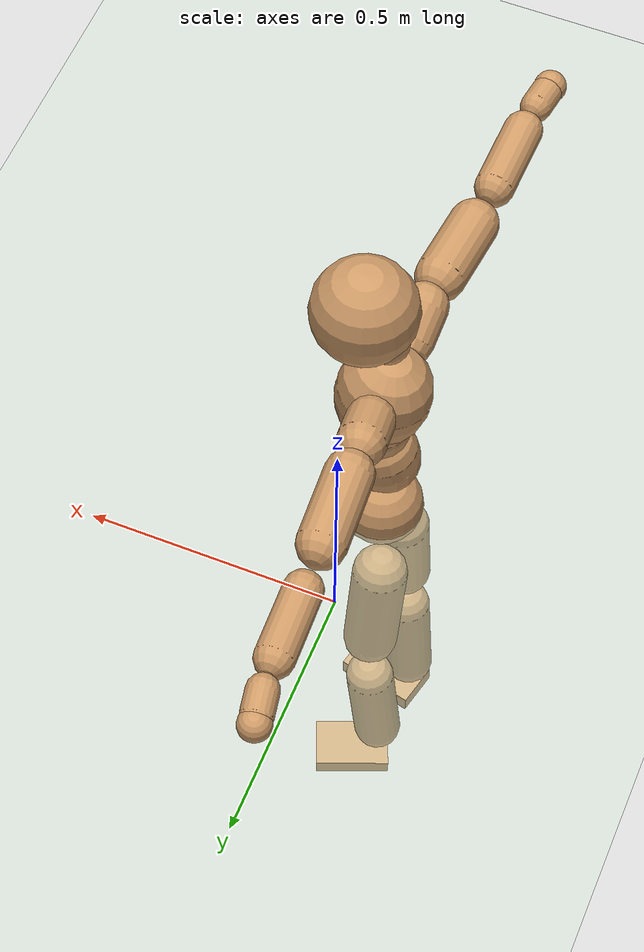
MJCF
<mujoco model="humanoid">
  <compiler coordinate="local" angle="radian"/>
  <default>
    <joint damping="0.0" armature="0.01" stiffness="0.0" limited="true"/>
    <geom conaffinity="1" condim="3" contype="7" margin="0.001" rgba="0.8 0.6 .4 1"/>
  </default>
  <asset>
    <texture type="skybox" builtin="gradient" rgb1=".4 .5 .6" rgb2="0 0 0" width="100" height="100"/>
    <texture builtin="flat" height="1278" mark="cross" markrgb="1 1 1" name="texgeom" random="0.01" rgb1="0.8 0.6 0.4" rgb2="0.8 0.6 0.4" type="cube" width="127"/>
    <texture builtin="checker" height="100" name="texplane" rgb1="0 0 0" rgb2="0.8 0.8 0.8" type="2d" width="100"/>
    <material name="MatPlane" reflectance="0.5" shininess="1" specular="1" texrepeat="60 60" texture="texplane"/>
    <material name="geom" texture="texgeom" texuniform="true"/>
  </asset>
  <worldbody>
    <light cutoff="100" diffuse="1 1 1" dir="-0 0 -1.3" directional="true" exponent="1" pos="0 0 1.3" specular=".1 .1 .1"/>
    <geom conaffinity="1" condim="3" name="floor" pos="0 0 0" rgba="0.8 0.9 0.8 1" size="100 100 .2" type="plane" material="MatPlane"/>
    <body name="Pelvis" pos="-0.001 -0.2356 0.0047">
      <freejoint name="Pelvis"/>
      <geom type="sphere" contype="1" conaffinity="1" density="500" size="0.0817" pos="0.0000 0.0000 0.0000" name="Pelvis"/>
      <body name="L_Hip" pos="-0.0258 0.0504 -0.0781">
        <joint name="L_Hip_x" type="hinge" pos="0 0 0" axis="1 0 0" stiffness="800" damping="80" armature="0.02" range="-180.0000 180.0000"/>
        <joint name="L_Hip_y" type="hinge" pos="0 0 0" axis="0 1 0" stiffness="800" damping="80" armature="0.02" range="-180.0000 180.0000"/>
        <joint name="L_Hip_z" type="hinge" pos="0 0 0" axis="0 0 1" stiffness="800" damping="80" armature="0.02" range="-180.0000 180.0000"/>
        <geom type="capsule" contype="1" conaffinity="1" density="500" fromto="0.0018 0.0089 -0.0746 0.0071 0.0356 -0.2983" size="0.0544" name="L_Hip"/>
        <body name="L_Knee" pos="0.0089 0.0445 -0.3728">
          <joint name="L_Knee_x" type="hinge" pos="0 0 0" axis="1 0 0" stiffness="800" damping="80" armature="0.02" range="-180.0000 180.0000"/>
          <joint name="L_Knee_y" type="hinge" pos="0 0 0" axis="0 1 0" stiffness="800" damping="80" armature="0.02" range="-180.0000 180.0000"/>
          <joint name="L_Knee_z" type="hinge" pos="0 0 0" axis="0 0 1" stiffness="800" damping="80" armature="0.02" range="-180.0000 180.0000"/>
          <geom type="capsule" contype="1" conaffinity="1" density="500" fromto="-0.0065 -0.0022 -0.0761 -0.0260 -0.0086 -0.3046" size="0.0491" name="L_Knee"/>
          <body name="L_Ankle" pos="-0.0325 -0.0108 -0.3807">
            <joint name="L_Ankle_x" type="hinge" pos="0 0 0" axis="1 0 0" stiffness="800" damping="80" armature="0.02" range="-180.0000 180.0000"/>
            <joint name="L_Ankle_y" type="hinge" pos="0 0 0" axis="0 1 0" stiffness="800" damping="80" armature="0.02" range="-180.0000 180.0000"/>
            <joint name="L_Ankle_z" type="hinge" pos="0 0 0" axis="0 0 1" stiffness="800" damping="80" armature="0.02" range="-180.0000 180.0000"/>
            <geom type="box" contype="1" conaffinity="1" density="500" pos="0.0553 0.0225 -0.0279" size="0.0775 0.0505 0.0189" quat="0.9814 0.0000 0.0000 0.1922" name="L_Ankle"/>
            <body name="L_Toe" pos="0.1106 0.045 -0.0558">
              <joint name="L_Toe_x" type="hinge" pos="0 0 0" axis="1 0 0" stiffness="500" damping="50" armature="0.02" range="-180.0000 180.0000"/>
              <joint name="L_Toe_y" type="hinge" pos="0 0 0" axis="0 1 0" stiffness="500" damping="50" armature="0.02" range="-180.0000 180.0000"/>
              <joint name="L_Toe_z" type="hinge" pos="0 0 0" axis="0 0 1" stiffness="500" damping="50" armature="0.02" range="-180.0000 180.0000"/>
              <geom type="box" contype="1" conaffinity="1" density="500" pos="0.0000 0.0000 0.0296" size="0.001 0.0024 0.001" quat="0.9805 0.0000 0.0000 0.1966" name="L_Toe"/>
            </body>
          </body>
        </body>
      </body>
      <body name="R_Hip" pos="-0.0236 -0.0527 -0.0854">
        <joint name="R_Hip_x" type="hinge" pos="0 0 0" axis="1 0 0" stiffness="800" damping="80" armature="0.02" range="-180.0000 180.0000"/>
        <joint name="R_Hip_y" type="hinge" pos="0 0 0" axis="0 1 0" stiffness="800" damping="80" armature="0.02" range="-180.0000 180.0000"/>
        <joint name="R_Hip_z" type="hinge" pos="0 0 0" axis="0 0 1" stiffness="800" damping="80" armature="0.02" range="-180.0000 180.0000"/>
        <geom type="capsule" contype="1" conaffinity="1" density="500" fromto="-0.0004 -0.0088 -0.0730 -0.0016 -0.0350 -0.2921" size="0.0538" name="R_Hip"/>
        <body name="R_Knee" pos="-0.002 -0.0438 -0.3651">
          <joint name="R_Knee_x" type="hinge" pos="0 0 0" axis="1 0 0" stiffness="800" damping="80" armature="0.02" range="-180.0000 180.0000"/>
          <joint name="R_Knee_y" type="hinge" pos="0 0 0" axis="0 1 0" stiffness="800" damping="80" armature="0.02" range="-180.0000 180.0000"/>
          <joint name="R_Knee_z" type="hinge" pos="0 0 0" axis="0 0 1" stiffness="800" damping="80" armature="0.02" range="-180.0000 180.0000"/>
          <geom type="capsule" contype="1" conaffinity="1" density="500" fromto="-0.0060 0.0033 -0.0749 -0.0238 0.0131 -0.2997" size="0.0499" name="R_Knee"/>
          <body name="R_Ankle" pos="-0.0298 0.0164 -0.3747">
            <joint name="R_Ankle_x" type="hinge" pos="0 0 0" axis="1 0 0" stiffness="800" damping="80" armature="0.02" range="-180.0000 180.0000"/>
            <joint name="R_Ankle_y" type="hinge" pos="0 0 0" axis="0 1 0" stiffness="800" damping="80" armature="0.02" range="-180.0000 180.0000"/>
            <joint name="R_Ankle_z" type="hinge" pos="0 0 0" axis="0 0 1" stiffness="800" damping="80" armature="0.02" range="-180.0000 180.0000"/>
            <geom type="box" contype="1" conaffinity="1" density="500" pos="0.0596 -0.0139 -0.0295" size="0.0833 0.0472 0.0202" quat="0.9934 0.0000 0.0000 -0.1143" name="R_Ankle"/>
            <body name="R_Toe" pos="0.1192 -0.0278 -0.059">
              <joint name="R_Toe_x" type="hinge" pos="0 0 0" axis="1 0 0" stiffness="500" damping="50" armature="0.02" range="-180.0000 180.0000"/>
              <joint name="R_Toe_y" type="hinge" pos="0 0 0" axis="0 1 0" stiffness="500" damping="50" armature="0.02" range="-180.0000 180.0000"/>
              <joint name="R_Toe_z" type="hinge" pos="0 0 0" axis="0 0 1" stiffness="500" damping="50" armature="0.02" range="-180.0000 180.0000"/>
              <geom type="box" contype="1" conaffinity="1" density="500" pos="0.0000 0.0000 0.0319" size="0.0009 0.0023 0.0011" quat="0.9945 0.0000 0.0000 -0.1047" name="R_Toe"/>
            </body>
          </body>
        </body>
      </body>
      <body name="Torso" pos="-0.02 0.0037 0.1138">
        <joint name="Torso_x" type="hinge" pos="0 0 0" axis="1 0 0" stiffness="1000" damping="100" armature="0.02" range="-180.0000 180.0000"/>
        <joint name="Torso_y" type="hinge" pos="0 0 0" axis="0 1 0" stiffness="1000" damping="100" armature="0.02" range="-180.0000 180.0000"/>
        <joint name="Torso_z" type="hinge" pos="0 0 0" axis="0 0 1" stiffness="1000" damping="100" armature="0.02" range="-180.0000 180.0000"/>
        <geom type="capsule" contype="1" conaffinity="1" density="500" fromto="0.0198 0.0028 0.0841 0.0132 0.0019 0.0561" size="0.0665" name="Torso"/>
        <body name="Spine" pos="0.033 0.0047 0.1402">
          <joint name="Spine_x" type="hinge" pos="0 0 0" axis="1 0 0" stiffness="1000" damping="100" armature="0.02" range="-180.0000 180.0000"/>
          <joint name="Spine_y" type="hinge" pos="0 0 0" axis="0 1 0" stiffness="1000" damping="100" armature="0.02" range="-180.0000 180.0000"/>
          <joint name="Spine_z" type="hinge" pos="0 0 0" axis="0 0 1" stiffness="1000" damping="100" armature="0.02" range="-180.0000 180.0000"/>
          <geom type="capsule" contype="1" conaffinity="1" density="500" fromto="0.0010 -0.0011 0.0337 0.0007 -0.0007 0.0225" size="0.0665" name="Spine"/>
          <body name="Chest" pos="0.0017 -0.0018 0.0561">
            <joint name="Chest_x" type="hinge" pos="0 0 0" axis="1 0 0" stiffness="1000" damping="100" armature="0.02" range="-180.0000 180.0000"/>
            <joint name="Chest_y" type="hinge" pos="0 0 0" axis="0 1 0" stiffness="1000" damping="100" armature="0.02" range="-180.0000 180.0000"/>
            <joint name="Chest_z" type="hinge" pos="0 0 0" axis="0 0 1" stiffness="1000" damping="100" armature="0.02" range="-180.0000 180.0000"/>
            <geom type="capsule" contype="1" conaffinity="1" density="500" fromto="-0.0119 -0.0056 0.0805 -0.0079 -0.0037 0.0536" size="0.0889" name="Chest"/>
            <body name="Neck" pos="-0.0217 -0.0139 0.1971">
              <joint name="Neck_x" type="hinge" pos="0 0 0" axis="1 0 0" stiffness="500" damping="50" armature="0.02" range="-180.0000 180.0000"/>
              <joint name="Neck_y" type="hinge" pos="0 0 0" axis="0 1 0" stiffness="500" damping="50" armature="0.02" range="-180.0000 180.0000"/>
              <joint name="Neck_z" type="hinge" pos="0 0 0" axis="0 0 1" stiffness="500" damping="50" armature="0.02" range="-180.0000 180.0000"/>
              <geom type="capsule" contype="1" conaffinity="1" density="500" fromto="0.0106 0.0018 0.0199 0.0425 0.0070 0.0797" size="0.0415" name="Neck"/>
              <body name="Head" pos="0.0531 0.0088 0.0997">
                <joint name="Head_x" type="hinge" pos="0 0 0" axis="1 0 0" stiffness="500" damping="50" armature="0.02" range="-180.0000 180.0000"/>
                <joint name="Head_y" type="hinge" pos="0 0 0" axis="0 1 0" stiffness="500" damping="50" armature="0.02" range="-180.0000 180.0000"/>
                <joint name="Head_z" type="hinge" pos="0 0 0" axis="0 0 1" stiffness="500" damping="50" armature="0.02" range="-180.0000 180.0000"/>
                <geom type="sphere" contype="1" conaffinity="1" density="500" size="0.0994" pos="0.0000 0.0000 0.0000" name="Head"/>
              </body>
            </body>
            <body name="L_Thorax" pos="-0.0169 0.065 0.1026">
              <joint name="L_Thorax_x" type="hinge" pos="0 0 0" axis="1 0 0" stiffness="500" damping="50" armature="0.02" range="-180.0000 180.0000"/>
              <joint name="L_Thorax_y" type="hinge" pos="0 0 0" axis="0 1 0" stiffness="500" damping="50" armature="0.02" range="-180.0000 180.0000"/>
              <joint name="L_Thorax_z" type="hinge" pos="0 0 0" axis="0 0 1" stiffness="500" damping="50" armature="0.02" range="-180.0000 180.0000"/>
              <geom type="capsule" contype="1" conaffinity="1" density="500" fromto="-0.0029 0.0223 0.0088 -0.0114 0.0893 0.0350" size="0.0456" name="L_Thorax"/>
              <body name="L_Shoulder" pos="-0.0143 0.1117 0.0438">
                <joint name="L_Shoulder_x" type="hinge" pos="0 0 0" axis="1 0 0" stiffness="500" damping="50" armature="0.02" range="-720.0000 720.0000"/>
                <joint name="L_Shoulder_y" type="hinge" pos="0 0 0" axis="0 1 0" stiffness="500" damping="50" armature="0.02" range="-720.0000 720.0000"/>
                <joint name="L_Shoulder_z" type="hinge" pos="0 0 0" axis="0 0 1" stiffness="500" damping="50" armature="0.02" range="-720.0000 720.0000"/>
                <geom type="capsule" contype="1" conaffinity="1" density="500" fromto="-0.0025 0.0479 -0.0030 -0.0099 0.1915 -0.0119" size="0.0462" name="L_Shoulder"/>
                <body name="L_Elbow" pos="-0.0124 0.2393 -0.0149">
                  <joint name="L_Elbow_x" type="hinge" pos="0 0 0" axis="1 0 0" stiffness="500" damping="50" armature="0.02" range="-720.0000 720.0000"/>
                  <joint name="L_Elbow_y" type="hinge" pos="0 0 0" axis="0 1 0" stiffness="500" damping="50" armature="0.02" range="-720.0000 720.0000"/>
                  <joint name="L_Elbow_z" type="hinge" pos="0 0 0" axis="0 0 1" stiffness="500" damping="50" armature="0.02" range="-720.0000 720.0000"/>
                  <geom type="capsule" contype="1" conaffinity="1" density="500" fromto="-0.0022 0.0468 0.0016 -0.0087 0.1871 0.0065" size="0.0368" name="L_Elbow"/>
                  <body name="L_Wrist" pos="-0.0109 0.2338 0.0081">
                    <joint name="L_Wrist_x" type="hinge" pos="0 0 0" axis="1 0 0" stiffness="300" damping="30" armature="0.02" range="-180.0000 180.0000"/>
                    <joint name="L_Wrist_y" type="hinge" pos="0 0 0" axis="0 1 0" stiffness="300" damping="30" armature="0.02" range="-180.0000 180.0000"/>
                    <joint name="L_Wrist_z" type="hinge" pos="0 0 0" axis="0 0 1" stiffness="300" damping="30" armature="0.02" range="-180.0000 180.0000"/>
                    <geom type="capsule" contype="1" conaffinity="1" density="500" fromto="-0.0027 0.0150 -0.0019 -0.0107 0.0600 -0.0074" size="0.0297" name="L_Wrist"/>
                    <body name="L_Hand" pos="-0.0134 0.075 -0.0093">
                      <joint name="L_Hand_x" type="hinge" pos="0 0 0" axis="1 0 0" stiffness="300" damping="30" armature="0.02" range="-180.0000 180.0000"/>
                      <joint name="L_Hand_y" type="hinge" pos="0 0 0" axis="0 1 0" stiffness="300" damping="30" armature="0.02" range="-180.0000 180.0000"/>
                      <joint name="L_Hand_z" type="hinge" pos="0 0 0" axis="0 0 1" stiffness="300" damping="30" armature="0.02" range="-180.0000 180.0000"/>
                      <geom type="sphere" contype="1" conaffinity="1" density="500" size="0.0309" pos="0.0000 0.0000 0.0000" name="L_Hand"/>
                    </body>
                  </body>
                </body>
              </body>
            </body>
            <body name="R_Thorax" pos="-0.0207 -0.0789 0.1026">
              <joint name="R_Thorax_x" type="hinge" pos="0 0 0" axis="1 0 0" stiffness="500" damping="50" armature="0.02" range="-180.0000 180.0000"/>
              <joint name="R_Thorax_y" type="hinge" pos="0 0 0" axis="0 1 0" stiffness="500" damping="50" armature="0.02" range="-180.0000 180.0000"/>
              <joint name="R_Thorax_z" type="hinge" pos="0 0 0" axis="0 0 1" stiffness="500" damping="50" armature="0.02" range="-180.0000 180.0000"/>
              <geom type="capsule" contype="1" conaffinity="1" density="500" fromto="-0.0010 -0.0209 0.0089 -0.0039 -0.0834 0.0356" size="0.0464" name="R_Thorax"/>
              <body name="R_Shoulder" pos="-0.0049 -0.1043 0.0446">
                <joint name="R_Shoulder_x" type="hinge" pos="0 0 0" axis="1 0 0" stiffness="500" damping="50" armature="0.02" range="-720.0000 720.0000"/>
                <joint name="R_Shoulder_y" type="hinge" pos="0 0 0" axis="0 1 0" stiffness="500" damping="50" armature="0.02" range="-720.0000 720.0000"/>
                <joint name="R_Shoulder_z" type="hinge" pos="0 0 0" axis="0 0 1" stiffness="500" damping="50" armature="0.02" range="-720.0000 720.0000"/>
                <geom type="capsule" contype="1" conaffinity="1" density="500" fromto="-0.0040 -0.0478 -0.0032 -0.0160 -0.1911 -0.0128" size="0.048" name="R_Shoulder"/>
                <body name="R_Elbow" pos="-0.02 -0.2388 -0.016">
                  <joint name="R_Elbow_x" type="hinge" pos="0 0 0" axis="1 0 0" stiffness="500" damping="50" armature="0.02" range="-720.0000 720.0000"/>
                  <joint name="R_Elbow_y" type="hinge" pos="0 0 0" axis="0 1 0" stiffness="500" damping="50" armature="0.02" range="-720.0000 720.0000"/>
                  <joint name="R_Elbow_z" type="hinge" pos="0 0 0" axis="0 0 1" stiffness="500" damping="50" armature="0.02" range="-720.0000 720.0000"/>
                  <geom type="capsule" contype="1" conaffinity="1" density="500" fromto="-0.0013 -0.0486 0.0015 -0.0053 -0.1945 0.0062" size="0.0381" name="R_Elbow"/>
                  <body name="R_Wrist" pos="-0.0066 -0.2431 0.0077">
                    <joint name="R_Wrist_x" type="hinge" pos="0 0 0" axis="1 0 0" stiffness="300" damping="30" armature="0.02" range="-180.0000 180.0000"/>
                    <joint name="R_Wrist_y" type="hinge" pos="0 0 0" axis="0 1 0" stiffness="300" damping="30" armature="0.02" range="-180.0000 180.0000"/>
                    <joint name="R_Wrist_z" type="hinge" pos="0 0 0" axis="0 0 1" stiffness="300" damping="30" armature="0.02" range="-180.0000 180.0000"/>
                    <geom type="capsule" contype="1" conaffinity="1" density="500" fromto="-0.0018 -0.0155 -0.0015 -0.0071 -0.0622 -0.0058" size="0.0305" name="R_Wrist"/>
                    <body name="R_Hand" pos="-0.0089 -0.0777 -0.0073">
                      <joint name="R_Hand_x" type="hinge" pos="0 0 0" axis="1 0 0" stiffness="300" damping="30" armature="0.02" range="-180.0000 180.0000"/>
                      <joint name="R_Hand_y" type="hinge" pos="0 0 0" axis="0 1 0" stiffness="300" damping="30" armature="0.02" range="-180.0000 180.0000"/>
                      <joint name="R_Hand_z" type="hinge" pos="0 0 0" axis="0 0 1" stiffness="300" damping="30" armature="0.02" range="-180.0000 180.0000"/>
                      <geom type="sphere" contype="1" conaffinity="1" density="500" size="0.0317" pos="0.0000 0.0000 0.0000" name="R_Hand"/>
                    </body>
                  </body>
                </body>
              </body>
            </body>
          </body>
        </body>
      </body>
    </body>
  </worldbody>
  <actuator>
    <motor name="L_Hip_x" joint="L_Hip_x" gear="500"/>
    <motor name="L_Hip_y" joint="L_Hip_y" gear="500"/>
    <motor name="L_Hip_z" joint="L_Hip_z" gear="500"/>
    <motor name="L_Knee_x" joint="L_Knee_x" gear="500"/>
    <motor name="L_Knee_y" joint="L_Knee_y" gear="500"/>
    <motor name="L_Knee_z" joint="L_Knee_z" gear="500"/>
    <motor name="L_Ankle_x" joint="L_Ankle_x" gear="500"/>
    <motor name="L_Ankle_y" joint="L_Ankle_y" gear="500"/>
    <motor name="L_Ankle_z" joint="L_Ankle_z" gear="500"/>
    <motor name="L_Toe_x" joint="L_Toe_x" gear="500"/>
    <motor name="L_Toe_y" joint="L_Toe_y" gear="500"/>
    <motor name="L_Toe_z" joint="L_Toe_z" gear="500"/>
    <motor name="R_Hip_x" joint="R_Hip_x" gear="500"/>
    <motor name="R_Hip_y" joint="R_Hip_y" gear="500"/>
    <motor name="R_Hip_z" joint="R_Hip_z" gear="500"/>
    <motor name="R_Knee_x" joint="R_Knee_x" gear="500"/>
    <motor name="R_Knee_y" joint="R_Knee_y" gear="500"/>
    <motor name="R_Knee_z" joint="R_Knee_z" gear="500"/>
    <motor name="R_Ankle_x" joint="R_Ankle_x" gear="500"/>
    <motor name="R_Ankle_y" joint="R_Ankle_y" gear="500"/>
    <motor name="R_Ankle_z" joint="R_Ankle_z" gear="500"/>
    <motor name="R_Toe_x" joint="R_Toe_x" gear="500"/>
    <motor name="R_Toe_y" joint="R_Toe_y" gear="500"/>
    <motor name="R_Toe_z" joint="R_Toe_z" gear="500"/>
    <motor name="Torso_x" joint="Torso_x" gear="500"/>
    <motor name="Torso_y" joint="Torso_y" gear="500"/>
    <motor name="Torso_z" joint="Torso_z" gear="500"/>
    <motor name="Spine_x" joint="Spine_x" gear="500"/>
    <motor name="Spine_y" joint="Spine_y" gear="500"/>
    <motor name="Spine_z" joint="Spine_z" gear="500"/>
    <motor name="Chest_x" joint="Chest_x" gear="500"/>
    <motor name="Chest_y" joint="Chest_y" gear="500"/>
    <motor name="Chest_z" joint="Chest_z" gear="500"/>
    <motor name="Neck_x" joint="Neck_x" gear="500"/>
    <motor name="Neck_y" joint="Neck_y" gear="500"/>
    <motor name="Neck_z" joint="Neck_z" gear="500"/>
    <motor name="Head_x" joint="Head_x" gear="500"/>
    <motor name="Head_y" joint="Head_y" gear="500"/>
    <motor name="Head_z" joint="Head_z" gear="500"/>
    <motor name="L_Thorax_x" joint="L_Thorax_x" gear="500"/>
    <motor name="L_Thorax_y" joint="L_Thorax_y" gear="500"/>
    <motor name="L_Thorax_z" joint="L_Thorax_z" gear="500"/>
    <motor name="L_Shoulder_x" joint="L_Shoulder_x" gear="500"/>
    <motor name="L_Shoulder_y" joint="L_Shoulder_y" gear="500"/>
    <motor name="L_Shoulder_z" joint="L_Shoulder_z" gear="500"/>
    <motor name="L_Elbow_x" joint="L_Elbow_x" gear="500"/>
    <motor name="L_Elbow_y" joint="L_Elbow_y" gear="500"/>
    <motor name="L_Elbow_z" joint="L_Elbow_z" gear="500"/>
    <motor name="L_Wrist_x" joint="L_Wrist_x" gear="500"/>
    <motor name="L_Wrist_y" joint="L_Wrist_y" gear="500"/>
    <motor name="L_Wrist_z" joint="L_Wrist_z" gear="500"/>
    <motor name="L_Hand_x" joint="L_Hand_x" gear="500"/>
    <motor name="L_Hand_y" joint="L_Hand_y" gear="500"/>
    <motor name="L_Hand_z" joint="L_Hand_z" gear="500"/>
    <motor name="R_Thorax_x" joint="R_Thorax_x" gear="500"/>
    <motor name="R_Thorax_y" joint="R_Thorax_y" gear="500"/>
    <motor name="R_Thorax_z" joint="R_Thorax_z" gear="500"/>
    <motor name="R_Shoulder_x" joint="R_Shoulder_x" gear="500"/>
    <motor name="R_Shoulder_y" joint="R_Shoulder_y" gear="500"/>
    <motor name="R_Shoulder_z" joint="R_Shoulder_z" gear="500"/>
    <motor name="R_Elbow_x" joint="R_Elbow_x" gear="500"/>
    <motor name="R_Elbow_y" joint="R_Elbow_y" gear="500"/>
    <motor name="R_Elbow_z" joint="R_Elbow_z" gear="500"/>
    <motor name="R_Wrist_x" joint="R_Wrist_x" gear="500"/>
    <motor name="R_Wrist_y" joint="R_Wrist_y" gear="500"/>
    <motor name="R_Wrist_z" joint="R_Wrist_z" gear="500"/>
    <motor name="R_Hand_x" joint="R_Hand_x" gear="500"/>
    <motor name="R_Hand_y" joint="R_Hand_y" gear="500"/>
    <motor name="R_Hand_z" joint="R_Hand_z" gear="500"/>
  </actuator>
  <contact>
    <exclude body1="Torso" body2="Chest"/>
    <exclude body1="Head" body2="Chest"/>
    <exclude body1="R_Knee" body2="R_Toe"/>
    <exclude body1="R_Knee" body2="L_Ankle"/>
    <exclude body1="R_Knee" body2="L_Toe"/>
    <exclude body1="L_Knee" body2="L_Toe"/>
    <exclude body1="L_Knee" body2="R_Ankle"/>
    <exclude body1="L_Knee" body2="R_Toe"/>
    <exclude body1="L_Shoulder" body2="Chest"/>
    <exclude body1="R_Shoulder" body2="Chest"/>
  </contact>
  <sensor/>
  <size njmax="700" nconmax="700"/>
</mujoco>
